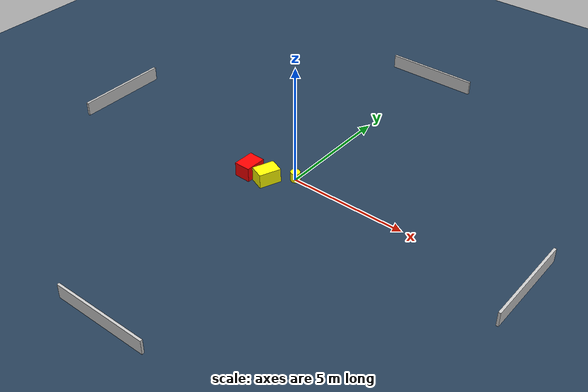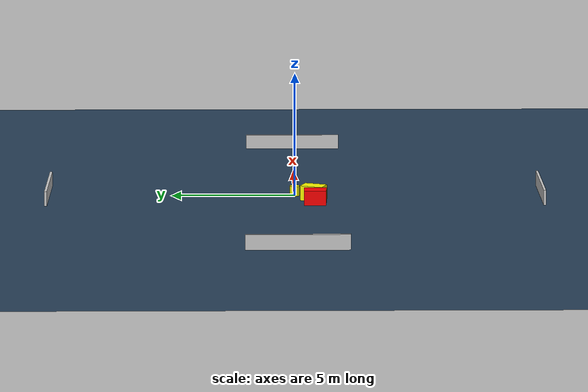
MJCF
<?xml version="1.0" ?>
<mujoco model="generated_environment">
  <option timestep="0.01" integrator="RK4" cone="elliptic"/>
  <default>
    <geom density="1"/>
  </default>
  <asset>
    <texture builtin="gradient" height="3072" name="skybox" rgb1="0.3 0.5 0.7" rgb2="0 0 0" type="skybox" width="512"/>
    <texture builtin="checker" height="300" name="groundplane" rgb1="0.2 0.3 0.4" rgb2="0.1 0.2 0.3" type="2d" width="300"/>
    <material name="groundplane" reflectance="0.2" texrepeat="5 5" texture="groundplane"/>
  </asset>
  <worldbody>
    <light dir="0 0 -1" directional="true" pos="0 0 1.5"/>
    <geom condim="3" friction="0.5 0.005 0.001" material="groundplane" name="floor" pos="0 0 0" size="0 0 0.05" type="plane"/>
    <body name="walls">
      <geom name="wall_1" condim="4" pos="-10.0 0.0 0.3" rgba="0.800000011920929 0.800000011920929 0.800000011920929 1.0" size="0.05 2.0 0.3" type="box"/>
      <geom name="wall_2" condim="4" pos="10.0 0.0 0.3" rgba="0.800000011920929 0.800000011920929 0.800000011920929 1.0" size="0.05 2.0 0.3" type="box"/>
      <geom name="wall_3" condim="4" pos="0.0 -10.0 0.3" rgba="0.800000011920929 0.800000011920929 0.800000011920929 1.0" size="2.0 0.05 0.3" type="box"/>
      <geom name="wall_4" condim="4" pos="0.0 10.0 0.3" rgba="0.800000011920929 0.800000011920929 0.800000011920929 1.0" size="2.0 0.05 0.3" type="box"/>
    </body>
    <body name="robot">
      <joint name="joint_x" type="slide" pos="0 0 0" axis="1 0 0"/>
      <joint name="joint_y" type="slide" pos="0 0 0" axis="0 1 0"/>
      <geom name="robot" type="cylinder" pos="0.0 0.0 0.2" size="0.2 0.2 0.0" mass="5.0" friction="1.0 0.005 0.0001" condim="4" rgba="1.0 1.0 0.0 1.0"/>
    </body>
    <body name="obstacle_1_movable">
      <geom name="obstacle_1_movable" condim="4" pos="-0.8478657469424997 -0.743741609781434 0.3" euler="0 0 158.05719227136217" friction="0.0 0.005 0.001" rgba="1.0 1.0 0.0 1.0" size="0.31824680885601625 0.46146639662449884 0.3" type="box" mass="0.1"/>
      <joint type="free"/>
    </body>
    <body name="obstacle_2_static">
      <geom name="obstacle_2_static" condim="4" pos="-1.6864254275556276 -0.7983861628777903 0.3" euler="0 0 88.45749242923111" friction="0.0 0.005 0.001" rgba="1.0 0.0 0.0 1.0" size="0.44772842665066803 0.3441313281348718 0.3" type="box"/>
    </body>
  </worldbody>
  <actuator>
    <motor name="actuator_x" joint="joint_x" gear="1" ctrlrange="-1 1"/>
    <motor name="actuator_y" joint="joint_y" gear="1" ctrlrange="-1 1"/>
  </actuator>
</mujoco>
